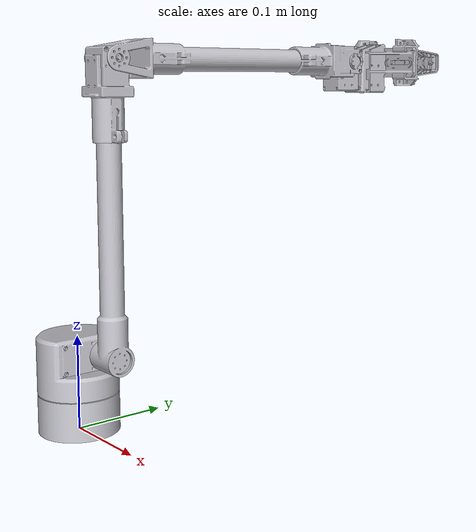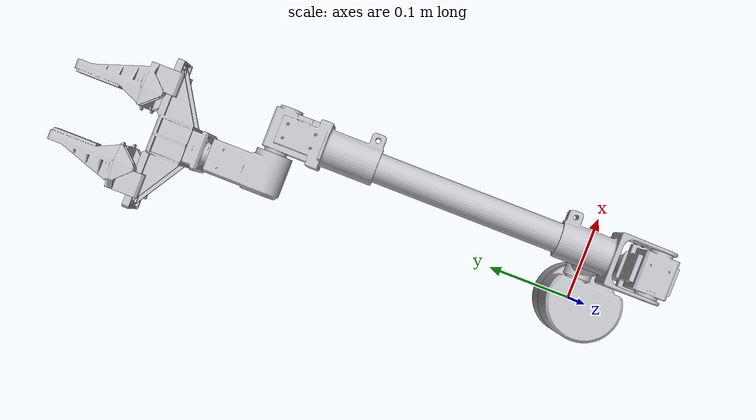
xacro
<?xml version="1.0" ?>
<robot name="soomac" xmlns:xacro="http://www.ros.org/wiki/xacro">

<xacro:include filename="$(find soomac_description)/urdf/materials.xacro" />
<xacro:include filename="$(find soomac_description)/urdf/soomac.trans" />
<xacro:include filename="$(find soomac_description)/urdf/soomac.gazebo" />
<link name="base_link">
  <inertial>
    <origin xyz="1.3820185154499092e-05 -0.0005045956311069184 0.020522282272331886" rpy="0 0 0"/>
    <mass value="1.5026706265949556"/>
    <inertia ixx="0.000984" iyy="0.000985" izz="0.001544" ixy="0.0" iyz="-1e-06" ixz="-0.0"/>
  </inertial>
  <visual>
    <origin xyz="0 0 0" rpy="0 0 0"/>
    <geometry>
      <mesh filename="package://soomac_description/meshes/base_link.stl" scale="0.001 0.001 0.001"/>
    </geometry>
    <material name="silver"/>
  </visual>
  <collision>
    <origin xyz="0 0 0" rpy="0 0 0"/>
    <geometry>
      <mesh filename="package://soomac_description/meshes/base_link.stl" scale="0.001 0.001 0.001"/>
    </geometry>
  </collision>
</link>

<link name="link2_1">
  <inertial>
    <origin xyz="-0.004855588947938449 -1.5745210662496947e-05 0.0391777283631466" rpy="0 0 0"/>
    <mass value="1.718809170564294"/>
    <inertia ixx="0.001233" iyy="0.000991" izz="0.001466" ixy="-4e-06" iyz="-1e-06" ixz="5.4e-05"/>
  </inertial>
  <visual>
    <origin xyz="-7.4e-05 -0.000224 -0.038032" rpy="0 0 0"/>
    <geometry>
      <mesh filename="package://soomac_description/meshes/link2_1.stl" scale="0.001 0.001 0.001"/>
    </geometry>
    <material name="silver"/>
  </visual>
  <collision>
    <origin xyz="-7.4e-05 -0.000224 -0.038032" rpy="0 0 0"/>
    <geometry>
      <mesh filename="package://soomac_description/meshes/link2_1.stl" scale="0.001 0.001 0.001"/>
    </geometry>
  </collision>
</link>

<link name="link3_1">
  <inertial>
    <origin xyz="0.0202161635847504 -4.0144523101581786e-07 0.1780099079809248" rpy="0 0 0"/>
    <mass value="1.0936292604935065"/>
    <inertia ixx="0.015694" iyy="0.015708" izz="0.000195" ixy="-0.0" iyz="-0.0" ixz="-0.000126"/>
  </inertial>
  <visual>
    <origin xyz="-0.024372 -0.015535 -0.082303" rpy="0 0 0"/>
    <geometry>
      <mesh filename="package://soomac_description/meshes/link3_1.stl" scale="0.001 0.001 0.001"/>
    </geometry>
    <material name="silver"/>
  </visual>
  <collision>
    <origin xyz="-0.024372 -0.015535 -0.082303" rpy="0 0 0"/>
    <geometry>
      <mesh filename="package://soomac_description/meshes/link3_1.stl" scale="0.001 0.001 0.001"/>
    </geometry>
  </collision>
</link>

<link name="link4_1">
  <inertial>
    <origin xyz="-0.01977195703514885 0.21560279425657583 -1.3265169511611496e-05" rpy="0 0 0"/>
    <mass value="1.030675926945332"/>
    <inertia ixx="0.012836" iyy="0.000214" izz="0.012863" ixy="2.7e-05" iyz="-0.0" ixz="-0.0"/>
  </inertial>
  <visual>
    <origin xyz="-0.064747 -0.015535 -0.385553" rpy="0 0 0"/>
    <geometry>
      <mesh filename="package://soomac_description/meshes/link4_1.stl" scale="0.001 0.001 0.001"/>
    </geometry>
    <material name="silver"/>
  </visual>
  <collision>
    <origin xyz="-0.064747 -0.015535 -0.385553" rpy="0 0 0"/>
    <geometry>
      <mesh filename="package://soomac_description/meshes/link4_1.stl" scale="0.001 0.001 0.001"/>
    </geometry>
  </collision>
</link>

<link name="link5_1">
  <inertial>
    <origin xyz="-0.019524198771248544 0.02035587176782283 -0.0072839708015024485" rpy="0 0 0"/>
    <mass value="0.549830169942123"/>
    <inertia ixx="0.000269" iyy="0.000137" izz="0.000218" ixy="1.1e-05" iyz="5e-05" ixz="-4e-06"/>
  </inertial>
  <visual>
    <origin xyz="-0.024997 -0.343285 -0.38554" rpy="0 0 0"/>
    <geometry>
      <mesh filename="package://soomac_description/meshes/link5_1.stl" scale="0.001 0.001 0.001"/>
    </geometry>
    <material name="silver"/>
  </visual>
  <collision>
    <origin xyz="-0.024997 -0.343285 -0.38554" rpy="0 0 0"/>
    <geometry>
      <mesh filename="package://soomac_description/meshes/link5_1.stl" scale="0.001 0.001 0.001"/>
    </geometry>
  </collision>
</link>

<link name="link6_gripper_1">
  <inertial>
    <origin xyz="6.660080069166921e-06 0.031298940076902815 -0.008506254943594194" rpy="0 0 0"/>
    <mass value="0.6694674405992905"/>
    <inertia ixx="0.000271" iyy="0.000428" izz="0.000393" ixy="-0.0" iyz="-2.2e-05" ixz="-0.0"/>
  </inertial>
  <visual>
    <origin xyz="-0.004497 -0.391785 -0.38554" rpy="0 0 0"/>
    <geometry>
      <mesh filename="package://soomac_description/meshes/link6_gripper_1.stl" scale="0.001 0.001 0.001"/>
    </geometry>
    <material name="silver"/>
  </visual>
  <collision>
    <origin xyz="-0.004497 -0.391785 -0.38554" rpy="0 0 0"/>
    <geometry>
      <mesh filename="package://soomac_description/meshes/link6_gripper_1.stl" scale="0.001 0.001 0.001"/>
    </geometry>
  </collision>
</link>

<link name="link7_finger_r_1">
  <inertial>
    <origin xyz="-0.25575823794491925 0.1487141700629765 -0.3449996385481648" rpy="0 0 0"/>
    <mass value="0.2185972441854391"/>
    <inertia ixx="0.000156" iyy="6.2e-05" izz="0.000125" ixy="-2e-05" iyz="0.0" ixz="-0.0"/>
  </inertial>
  <visual>
    <origin xyz="-0.241867 -0.318206 -0.73054" rpy="0 0 0"/>
    <geometry>
      <mesh filename="package://soomac_description/meshes/link7_finger_r_1.stl" scale="0.001 0.001 0.001"/>
    </geometry>
    <material name="silver"/>
  </visual>
  <collision>
    <origin xyz="-0.241867 -0.318206 -0.73054" rpy="0 0 0"/>
    <geometry>
      <mesh filename="package://soomac_description/meshes/link7_finger_r_1.stl" scale="0.001 0.001 0.001"/>
    </geometry>
  </collision>
</link>

<link name="link8_finger_l_1">
  <inertial>
    <origin xyz="-0.2670413034528619 0.14871019177007172 -0.34500057461094463" rpy="0 0 0"/>
    <mass value="0.21857349417540464"/>
    <inertia ixx="0.000156" iyy="6.2e-05" izz="0.000125" ixy="2e-05" iyz="-0.0" ixz="-0.0"/>
  </inertial>
  <visual>
    <origin xyz="-0.289967 -0.318206 -0.73054" rpy="0 0 0"/>
    <geometry>
      <mesh filename="package://soomac_description/meshes/link8_finger_l_1.stl" scale="0.001 0.001 0.001"/>
    </geometry>
    <material name="silver"/>
  </visual>
  <collision>
    <origin xyz="-0.289967 -0.318206 -0.73054" rpy="0 0 0"/>
    <geometry>
      <mesh filename="package://soomac_description/meshes/link8_finger_l_1.stl" scale="0.001 0.001 0.001"/>
    </geometry>
  </collision>
</link>

<joint name="link2_to_base_link" type="continuous">
  <origin xyz="7.4e-05 0.000224 0.038032" rpy="0 0 0"/>
  <parent link="base_link"/>
  <child link="link2_1"/>
  <axis xyz="0.0 -0.0 1.0"/>
</joint>

<joint name="link3_to_link2" type="continuous">
  <origin xyz="0.024298 0.015311 0.044271" rpy="0 0 0"/>
  <parent link="link2_1"/>
  <child link="link3_1"/>
  <axis xyz="1.0 -0.0 -0.0"/>
</joint>

<joint name="link4_to_link3" type="continuous">
  <origin xyz="0.040375 0.0 0.30325" rpy="0 0 0"/>
  <parent link="link3_1"/>
  <child link="link4_1"/>
  <axis xyz="1.0 0.0 -0.0"/>
</joint>

<joint name="link5_to_link4" type="continuous">
  <origin xyz="-0.03975 0.32775 -1.3e-05" rpy="0 0 0"/>
  <parent link="link4_1"/>
  <child link="link5_1"/>
  <axis xyz="-1.0 -0.0 0.0"/>
</joint>

<joint name="link6_to_link5" type="continuous">
  <origin xyz="-0.0205 0.0485 0.0" rpy="0 0 0"/>
  <parent link="link5_1"/>
  <child link="link6_gripper_1"/>
  <axis xyz="0.0 1.0 0.0"/>
</joint>

<joint name="link7_to_link6" type="prismatic">
  <origin xyz="0.23737 -0.073579 0.345" rpy="0 0 0"/>
  <parent link="link6_gripper_1"/>
  <child link="link7_finger_r_1"/>
  <axis xyz="1.0 -0.0 0.0"/>
  <limit upper="-0.00295" lower="-0.031" effort="100" velocity="100"/>
</joint>

<joint name="link8_to_link6" type="prismatic">
  <origin xyz="0.28547 -0.073579 0.345" rpy="0 0 0"/>
  <parent link="link6_gripper_1"/>
  <child link="link8_finger_l_1"/>
  <axis xyz="1.0 -0.0 0.0"/>
  <limit upper="0.031" lower="0.00295" effort="100" velocity="100"/>
</joint>

</robot>
